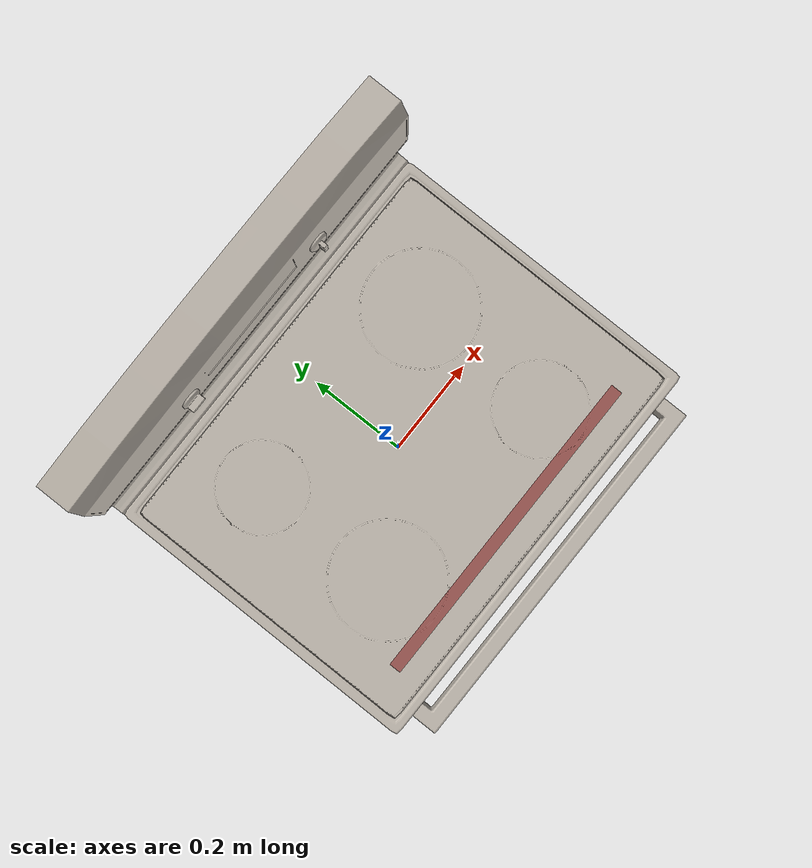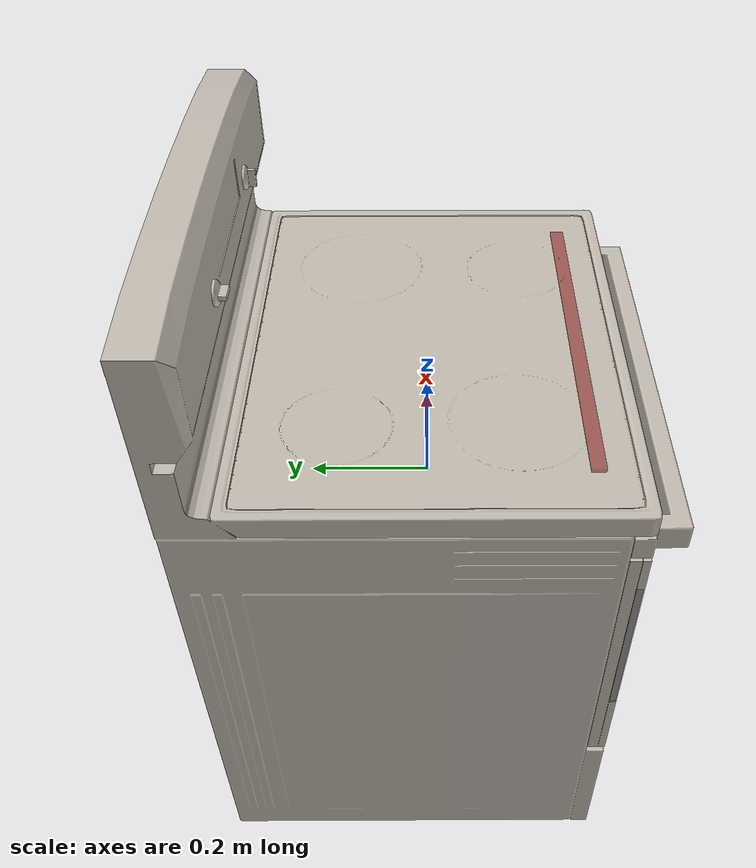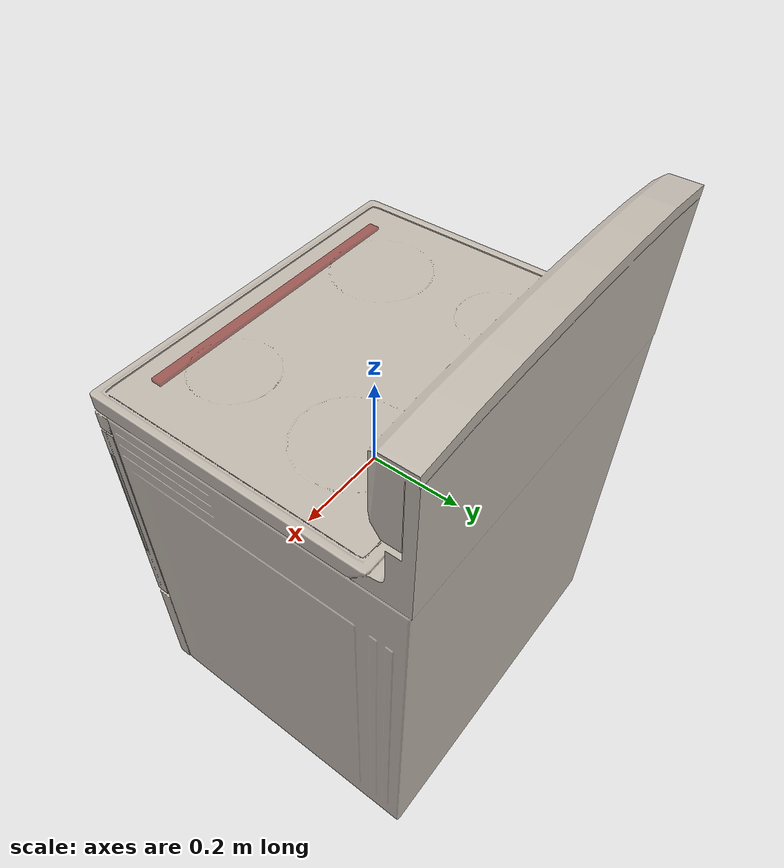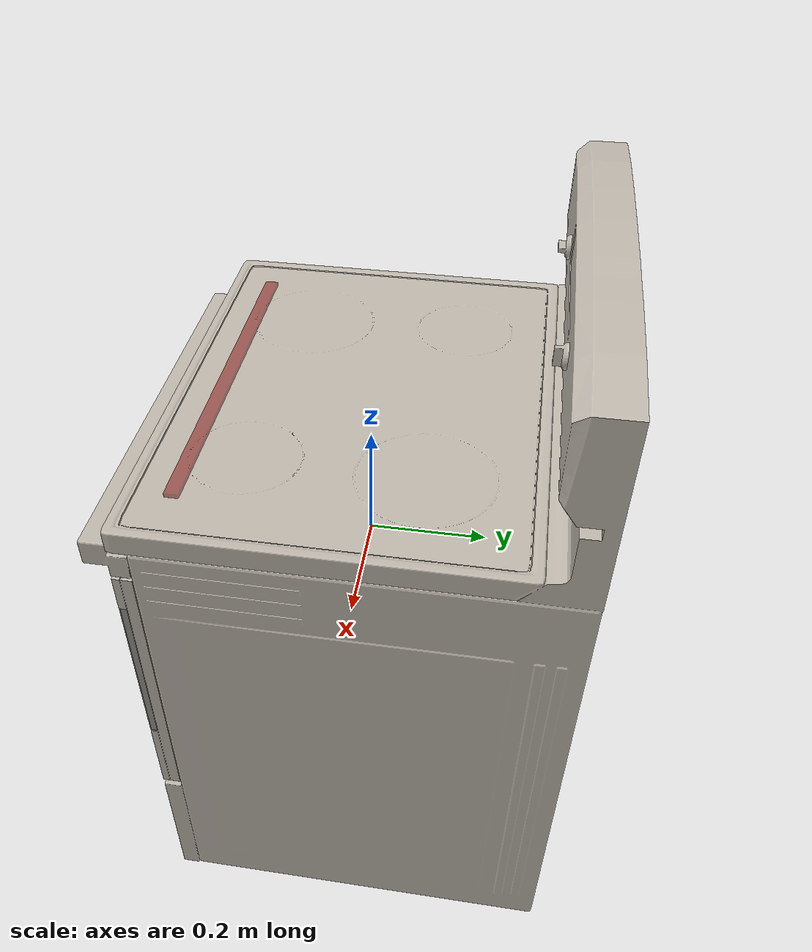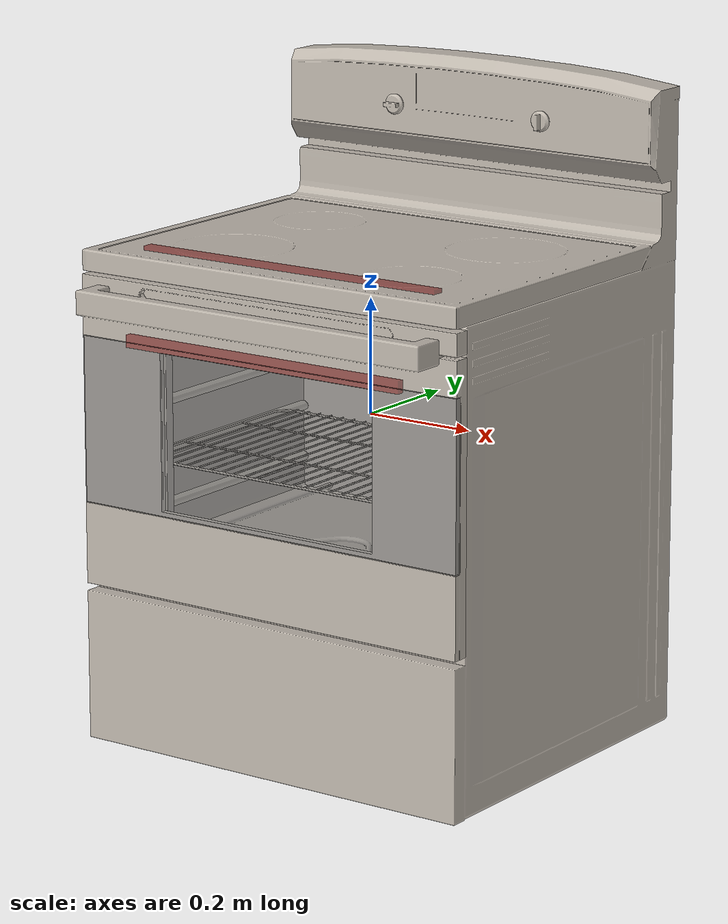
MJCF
<?xml version='1.0' encoding='UTF-8'?>
<mujoco model="model">
  <option timestep="0.002" gravity="0.0 0.0 -9.81"/>
  <compiler angle="radian"/>
  <asset>
    <mesh file="visuals/door.obj" name="door_vis"/>
    <mesh file="visuals/door_Clear.obj" name="door_Clear_vis"/>
    <mesh file="visuals/knob_temp.obj" name="knob_temp_vis"/>
    <mesh file="visuals/knob_time.obj" name="knob_time_vis"/>
    <mesh file="visuals/Body001.obj" name="Body001_vis"/>
    <mesh file="visuals/rack0.obj" name="rack0_vis"/>
    <texture file="visuals/T_BC001.png" name="Body001_material" type="2d"/>
    <material name="Body001_material" rgba="1 1 1 1.0" texture="Body001_material" shininess="0.5151148438453674" specular="2"/>
    <texture file="visuals/T_BC001.png" name="door_material" type="2d"/>
    <material name="door_material" rgba="1 1 1 1.0" texture="door_material" shininess="0.5151148438453674" specular="2"/>
    <material name="door_Clear_material" rgba="0.5 0.5 0.5 0.5" shininess="0.4472135901451111" specular="2"/>
    <texture file="visuals/T_BC001.png" name="knob_temp_material" type="2d"/>
    <material name="knob_temp_material" rgba="1 1 1 1.0" texture="knob_temp_material" shininess="0.5151148438453674" specular="2"/>
    <texture file="visuals/T_BC001.png" name="knob_time_material" type="2d"/>
    <material name="knob_time_material" rgba="1 1 1 1.0" texture="knob_time_material" shininess="0.5151148438453674" specular="2"/>
    <texture file="visuals/T_BC001.png" name="rack0_material" type="2d"/>
    <material name="rack0_material" rgba="1 1 1 1.0" texture="rack0_material" shininess="0.5151148438453674" specular="3"/>
  </asset>
  <default>
    <default class="visual">
      <geom conaffinity="0" contype="0" group="1" type="mesh"/>
    </default>
    <default class="collision">
      <geom group="0" rgba="0.5 0 0 0.5"/>
    </default>
    <default class="spawn">
      <geom group="0" rgba="1 1 1 0.5" contype="0" conaffinity="0"/>
      <site group="0" rgba="1 1 1 0.5"/>
    </default>
    <default class="region">
      <geom group="1" conaffinity="0" contype="0" rgba="0 1 0 0"/>
    </default>
  </default>
  <worldbody>
    <body>
      <body name="object">
        <geom mesh="Body001_vis" type="mesh" solimp="0.998 0.998 0.001" solref="0.001 1" friction="0.95 0.3 0.1" class="visual" material="Body001_material"/>
        <geom class="collision" type="box" pos="0.00018127 -0.22897513 0.22577775" size="0.29462671279907227 0.010458254255354404 0.06843314319849014" quat="1.0 0.0 0.0 0.0"/>
        <geom class="collision" type="box" pos="-0.19433403 0.02124247 -0.01608025" size="0.01093402411788702 0.11918754875659943 0.1274147927761078" quat="1.0 0.0 0.0 0.0"/>
        <geom class="collision" type="box" pos="-0.23340075 0.02124248 0.10007337" size="0.03662951663136482 0.11918754875659943 0.011263417080044746" quat="1.0 0.0 0.0 0.0"/>
        <geom class="collision" type="box" pos="-0.23340075 0.02124248 -0.13239087" size="0.03662951663136482 0.11918754875659943 0.011263417080044746" quat="1.0 0.0 0.0 0.0"/>
        <geom class="collision" type="box" pos="0.19303145 0.02124270 -0.01608025" size="0.011911486275494099 0.11918764561414719 0.1274147927761078" quat="1.0 0.0 0.0 0.0"/>
        <geom class="collision" type="box" pos="0.23307492 0.02124240 0.10007336" size="0.036630406975746155 0.11918782442808151 0.011263416148722172" quat="1.0 0.0 0.0 0.0"/>
        <geom class="collision" type="box" pos="0.23307492 0.02124240 -0.13239084" size="0.036630406975746155 0.11918782442808151 0.011263416148722172" quat="1.0 0.0 0.0 0.0"/>
        <geom class="collision" type="box" pos="-0.24865250 0.04646508 0.00822315" size="0.037689339369535446 0.2640301287174225 0.2136763632297516" quat="1.0 0.0 0.0 0.0"/>
        <geom class="collision" type="box" pos="-0.00000236 0.26937332 0.00822319" size="0.27266040444374084 0.041121870279312134 0.21367639303207397" quat="1.0 0.0 0.0 0.0"/>
        <geom class="collision" type="box" pos="-0.00000240 0.04647411 0.19087635" size="0.27264204621315 0.264021098613739 0.04470467567443848" quat="1.0 0.0 0.0 0.0"/>
        <geom class="collision" type="box" pos="0.24792677 0.04646521 0.00822314" size="0.0384102426469326 0.26402997970581055 0.2136763632297516" quat="1.0 0.0 0.0 0.0"/>
        <geom class="collision" type="box" pos="-0.00000241 0.04493120 -0.19271827" size="0.27563047409057617 0.26556396484375 0.02704080007970333" quat="1.0 0.0 0.0 0.0"/>
        <geom class="collision" type="box" pos="0.00018126 -0.22802408 -0.23205271" size="0.29462799429893494 0.011409364640712738 0.05897103250026703" quat="1.0 0.0 0.0 0.0"/>
        <geom class="collision" type="box" pos="-0.25125322 -0.22802408 -0.01075340" size="0.04319367557764053 0.011409367434680462 0.1666313260793686" quat="1.0 0.0 0.0 0.0"/>
        <geom class="collision" type="box" pos="0.25151619 -0.22802408 -0.01075339" size="0.04319368675351143 0.011409370228648186 0.16663140058517456" quat="1.0 0.0 0.0 0.0"/>
        <body name="door">
          <joint axis="1.0 0.0 0.0" pos="3.145e-05 -0.26252331039102794 -0.2390075320378494" limited="true" name="door_joint" range="0.0 1.15" type="hinge" damping="1" frictionloss="1" armature="1" stiffness="2"/>
          <geom mesh="door_vis" type="mesh" solimp="0.998 0.998 0.001" solref="0.001 1" friction="0.95 0.3 0.1" class="visual" material="door_material"/>
          <geom class="collision" type="box" pos="-0.00002180 -0.30099137 0.14772311" size="0.01062837801873684 0.01062837801873684 0.27646785974502563" quat="0.49999818205833435 -0.5 0.5000017881393433 -0.5" name="door_handle_main"/>
          <geom class="collision" type="box" pos="0.26928383 -0.27714534 0.14807004" size="0.0217134952545166 0.017883628606796265 0.008192352950572968" quat="1.0 0.0 0.0 0.0"/>
          <geom class="collision" type="box" pos="-0.27021492 -0.27714534 0.14807004" size="0.022181296721100807 0.017883628606796265 0.008192352950572968" quat="1.0 0.0 0.0 0.0"/>
          <geom class="collision" type="box" pos="0.00003145 -0.25197477 -0.03846012" size="0.2923116385936737 0.010548540391027927 0.20054741203784943" quat="1.0 0.0 0.0 0.0" name="door_main"/>
          <body name="door_Clear">
            <geom mesh="door_Clear_vis" type="mesh" solimp="0.998 0.998 0.001" solref="0.001 1" friction="0.95 0.3 0.1" class="visual" material="door_Clear_material"/>
          </body>
        </body>
        <body name="knob_temp">
          <joint axis="0.0 -1.0 0.0" pos="0.11990086 -0.25593169 0.22816084" limited="true" name="knob_temp_joint" range="0.0 4.1887902047863905" type="hinge" damping="0.05" armature="1" frictionloss="0.75"/>
          <geom mesh="knob_temp_vis" type="mesh" solimp="0.998 0.998 0.001" solref="0.001 1" friction="0.95 0.3 0.1" class="visual" material="knob_temp_material"/>
          <geom class="collision" type="cylinder" pos="0.11990087 -0.24987097 0.22816087" size="0.024242224171757698 0.004775230307132006" quat="0.7071067094802856 -0.7071068286895752 -1.5700929612083792e-16 -2.2148510003422914e-23" name="knob_temp_main" friction="100 0.5 0.01"/>
          <geom class="collision" type="box" pos="0.11998949 -0.26090564 0.22851016" size="0.004499442875385284 0.007012367248535156 0.016013920307159424" quat="1.0 0.0 0.0 0.0" friction="100 0.5 0.01"/>
        </body>
        <body name="knob_time">
          <joint axis="0.0 1.0 0.0" pos="-0.11990092 -0.25593175 0.22815850" limited="true" name="knob_time_joint" range="0.0 4.886921905584122" type="hinge" damping="0.05" armature="1" frictionloss="0.75"/>
          <geom mesh="knob_time_vis" type="mesh" solimp="0.998 0.998 0.001" solref="0.001 1" friction="0.95 0.3 0.1" class="visual" material="knob_time_material"/>
          <geom class="collision" type="cylinder" pos="-0.12022277 -0.24987097 0.22816087" size="0.024538911879062653 0.00477523822337389" quat="0.7071067094802856 -0.7071068286895752 -1.5700929612083792e-16 -2.2148510003422914e-23" name="knob_time_main" friction="100 0.5 0.01"/>
          <geom class="collision" type="box" pos="-0.11994088 -0.26090564 0.22851016" size="0.004499442875385284 0.007012367248535156 0.016013920307159424" quat="1.0 0.0 0.0 0.0" friction="100 0.5 0.01"/>
        </body>
        <body name="rack0">
          <geom class="region" name="reg_rack0" type="box" pos="-0.0006846850000000043 0.000836155000000002 0.05946048000000001" size="0.171165515 0.10076834500000001 0.08147519"/>
          <joint axis="0.0 -1.0 0.0" pos="0.00048910 0.02062774 -0.02179793" limited="true" name="rack0_joint" range="0.0 0.24" type="slide" damping="1" frictionloss="1" armature=".01" stiffness="0.05"/>
          <geom mesh="rack0_vis" type="mesh" solimp="0.998 0.998 0.001" solref="0.001 1" friction="0.95 0.3 0.1" class="visual" material="rack0_material"/>
          <geom class="collision" type="box" pos="-0.17884299 0.02124250 -0.02125727" size="0.001931422739289701 0.1108129620552063 0.009279558435082436" quat="1.0 0.0 0.0 0.0"/>
          <geom class="collision" type="box" pos="-0.00082326 0.02124250 -0.02889220" size="0.17995114624500275 0.1108129620552063 0.0016446261433884501" quat="1.0 0.0 0.0 0.0"/>
          <geom class="collision" type="box" pos="0.17740910 0.02124250 -0.02125727" size="0.001931422739289701 0.1108129620552063 0.009279558435082436" quat="1.0 0.0 0.0 0.0"/>
          <geom class="collision" type="box" pos="-0.00028550 -0.08744780 -0.02125727" size="0.17808549106121063 0.002122658072039485 0.009279558435082436" quat="1.0 0.0 0.0 0.0"/>
          <geom class="collision" type="box" pos="-0.00028550 0.12891500 -0.02125727" size="0.17808549106121063 0.002122658072039485 0.009279558435082436" quat="1.0 0.0 0.0 0.0"/>
        </body>
        <geom class="region" name="reg_int" type="box" pos="-0.0003862000000000032 -0.005549079999999998 -0.009551480000000001" size="0.1767428 0.22841583999999998 0.15062544"/>
        <geom class="region" name="reg_main" type="box" pos="3.500000000933312e-08 0.03270452 3.500000000933312e-08" size="0.296128345 0.27881743 0.295359025"/>
      </body>
    </body>
  </worldbody>
  <actuator>
    <motor name="door_joint_actuator" joint="door_joint" gear="50"/>
    <motor name="knob_temp_joint_actuator" joint="knob_temp_joint" gear="10"/>
    <motor name="knob_time_joint_actuator" joint="knob_time_joint" gear="10"/>
    <motor name="rack0_joint_actuator" joint="rack0_joint" gear="50"/>
  </actuator>
</mujoco>
